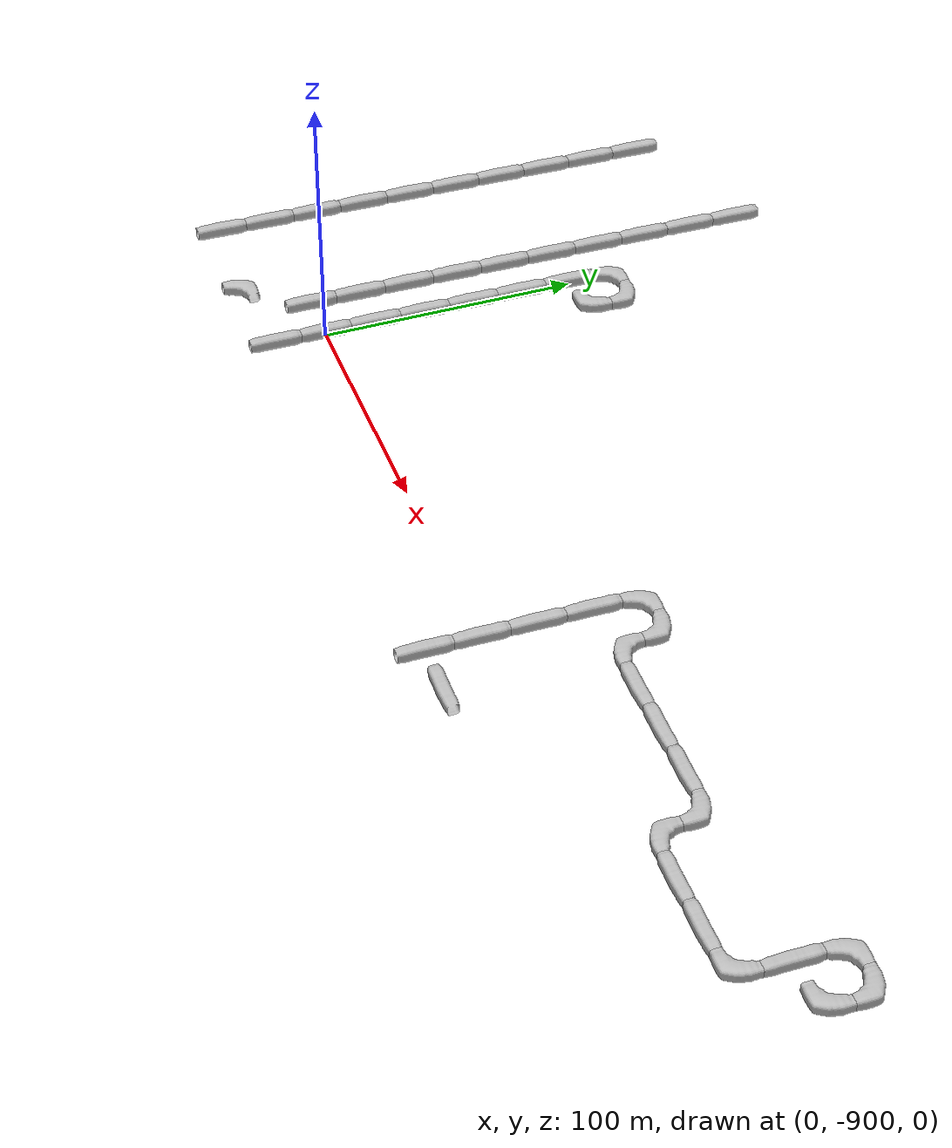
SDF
<sdf version="1.6">
 <world name="cave_16000_0">
  <include>
   <static>true</static>
   <name>cave_-1_-36</name>
   <pose>-20 -720 0 0 0 0.0</pose>
   <uri>model://cave_straight_20m</uri>
  </include>
  <include>
   <static>true</static>
   <name>cave_-1_-37</name>
   <pose>-20 -740 0 0 0 0.0</pose>
   <uri>model://cave_straight_20m</uri>
  </include>
  <include>
   <static>true</static>
   <name>cave_-1_-38</name>
   <pose>-20 -760 0 0 0 0.0</pose>
   <uri>model://cave_straight_20m</uri>
  </include>
  <include>
   <static>true</static>
   <name>cave_-1_-39</name>
   <pose>-20 -780 0 0 0 0.0</pose>
   <uri>model://cave_straight_20m</uri>
  </include>
  <include>
   <static>true</static>
   <name>cave_-1_-40</name>
   <pose>-20 -800 0 0 0 0.0</pose>
   <uri>model://cave_straight_20m</uri>
  </include>
  <include>
   <static>true</static>
   <name>cave_-1_-41</name>
   <pose>-20 -820 0 0 0 0.0</pose>
   <uri>model://cave_straight_20m</uri>
  </include>
  <include>
   <static>true</static>
   <name>cave_-1_-42</name>
   <pose>-20 -840 0 0 0 0.0</pose>
   <uri>model://cave_straight_20m</uri>
  </include>
  <include>
   <static>true</static>
   <name>cave_-1_-43</name>
   <pose>-20 -860 0 0 0 0.0</pose>
   <uri>model://cave_straight_20m</uri>
  </include>
  <include>
   <static>true</static>
   <name>cave_-1_-44</name>
   <pose>-20 -880 0 0 0 0.0</pose>
   <uri>model://cave_straight_20m</uri>
  </include>
  <include>
   <static>true</static>
   <name>cave_-1_-45</name>
   <pose>-20 -900 0 0 0 0.0</pose>
   <uri>model://cave_straight_20m</uri>
  </include>
  <include>
   <static>true</static>
   <name>cave_10_-46</name>
   <pose>200 -920 0 0 0 1.5707963267948966</pose>
   <uri>model://cave_straight_20m</uri>
  </include>
  <include>
   <static>true</static>
   <name>cave_9_-46</name>
   <pose>180 -920 0 0 0 0.0</pose>
   <uri>model://cave_straight_20m</uri>
  </include>
  <include>
   <static>true</static>
   <name>cave_9_-45</name>
   <pose>180 -900 0 0 0 0.0</pose>
   <uri>model://cave_straight_20m</uri>
  </include>
  <include>
   <static>true</static>
   <name>cave_9_-44</name>
   <pose>180 -880 0 0 0 0.0</pose>
   <uri>model://cave_straight_20m</uri>
  </include>
  <include>
   <static>true</static>
   <name>cave_9_-43</name>
   <pose>180 -860 0 0 0 0.0</pose>
   <uri>model://cave_straight_20m</uri>
  </include>
  <include>
   <static>true</static>
   <name>cave_9_-42</name>
   <pose>180 -840 0 0 0 -1.5707963267948966</pose>
   <uri>model://cave_L_20m</uri>
  </include>
  <include>
   <static>true</static>
   <name>cave_10_-42</name>
   <pose>200 -840 0 0 0 3.141592653589793</pose>
   <uri>model://cave_L_20m</uri>
  </include>
  <include>
   <static>true</static>
   <name>cave_10_-43</name>
   <pose>200 -860 0 0 0 0.0</pose>
   <uri>model://cave_L_20m</uri>
  </include>
  <include>
   <static>true</static>
   <name>cave_11_-43</name>
   <pose>220 -860 0 0 0 1.5707963267948966</pose>
   <uri>model://cave_straight_20m</uri>
  </include>
  <include>
   <static>true</static>
   <name>cave_12_-43</name>
   <pose>240 -860 0 0 0 1.5707963267948966</pose>
   <uri>model://cave_straight_20m</uri>
  </include>
  <include>
   <static>true</static>
   <name>cave_13_-43</name>
   <pose>260 -860 0 0 0 1.5707963267948966</pose>
   <uri>model://cave_straight_20m</uri>
  </include>
  <include>
   <static>true</static>
   <name>cave_14_-43</name>
   <pose>280 -860 0 0 0 3.141592653589793</pose>
   <uri>model://cave_L_20m</uri>
  </include>
  <include>
   <static>true</static>
   <name>cave_14_-44</name>
   <pose>280 -880 0 0 0 0.0</pose>
   <uri>model://cave_L_20m</uri>
  </include>
  <include>
   <static>true</static>
   <name>cave_15_-44</name>
   <pose>300 -880 0 0 0 1.5707963267948966</pose>
   <uri>model://cave_straight_20m</uri>
  </include>
  <include>
   <static>true</static>
   <name>cave_16_-44</name>
   <pose>320 -880 0 0 0 1.5707963267948966</pose>
   <uri>model://cave_straight_20m</uri>
  </include>
  <include>
   <static>true</static>
   <name>cave_17_-44</name>
   <pose>340 -880 0 0 0 1.5707963267948966</pose>
   <uri>model://cave_L_20m</uri>
  </include>
  <include>
   <static>true</static>
   <name>cave_17_-43</name>
   <pose>340 -860 0 0 0 0.0</pose>
   <uri>model://cave_straight_20m</uri>
  </include>
  <include>
   <static>true</static>
   <name>cave_17_-42</name>
   <pose>340 -840 0 0 0 -1.5707963267948966</pose>
   <uri>model://cave_L_20m</uri>
  </include>
  <include>
   <static>true</static>
   <name>cave_18_-42</name>
   <pose>360 -840 0 0 0 3.141592653589793</pose>
   <uri>model://cave_L_20m</uri>
  </include>
  <include>
   <static>true</static>
   <name>cave_18_-43</name>
   <pose>360 -860 0 0 0 1.5707963267948966</pose>
   <uri>model://cave_L_20m</uri>
  </include>
  <include>
   <static>true</static>
   <name>cave_0_-46</name>
   <pose>0 -920 0 0 0 0.0</pose>
   <uri>model://cave_straight_20m</uri>
  </include>
  <include>
   <static>true</static>
   <name>cave_0_-45</name>
   <pose>0 -900 0 0 0 0.0</pose>
   <uri>model://cave_straight_20m</uri>
  </include>
  <include>
   <static>true</static>
   <name>cave_0_-44</name>
   <pose>0 -880 0 0 0 0.0</pose>
   <uri>model://cave_straight_20m</uri>
  </include>
  <include>
   <static>true</static>
   <name>cave_0_-43</name>
   <pose>0 -860 0 0 0 0.0</pose>
   <uri>model://cave_straight_20m</uri>
  </include>
  <include>
   <static>true</static>
   <name>cave_0_-42</name>
   <pose>0 -840 0 0 0 0.0</pose>
   <uri>model://cave_straight_20m</uri>
  </include>
  <include>
   <static>true</static>
   <name>cave_0_-41</name>
   <pose>0 -820 0 0 0 0.0</pose>
   <uri>model://cave_straight_20m</uri>
  </include>
  <include>
   <static>true</static>
   <name>cave_0_-40</name>
   <pose>0 -800 0 0 0 0.0</pose>
   <uri>model://cave_straight_20m</uri>
  </include>
  <include>
   <static>true</static>
   <name>cave_0_-39</name>
   <pose>0 -780 0 0 0 -1.5707963267948966</pose>
   <uri>model://cave_L_20m</uri>
  </include>
  <include>
   <static>true</static>
   <name>cave_1_-39</name>
   <pose>20 -780 0 0 0 3.141592653589793</pose>
   <uri>model://cave_L_20m</uri>
  </include>
  <include>
   <static>true</static>
   <name>cave_1_-40</name>
   <pose>20 -800 0 0 0 1.5707963267948966</pose>
   <uri>model://cave_L_20m</uri>
  </include>
  <include>
   <static>true</static>
   <name>cave_-2_-46</name>
   <pose>-40 -920 0 0 0 -1.5707963267948966</pose>
   <uri>model://cave_L_20m</uri>
  </include>
  <include>
   <static>true</static>
   <name>cave_-4_-37</name>
   <pose>-80 -740 0 0 0 0.0</pose>
   <uri>model://cave_straight_20m</uri>
  </include>
  <include>
   <static>true</static>
   <name>cave_-4_-38</name>
   <pose>-80 -760 0 0 0 0.0</pose>
   <uri>model://cave_straight_20m</uri>
  </include>
  <include>
   <static>true</static>
   <name>cave_-4_-39</name>
   <pose>-80 -780 0 0 0 0.0</pose>
   <uri>model://cave_straight_20m</uri>
  </include>
  <include>
   <static>true</static>
   <name>cave_-4_-40</name>
   <pose>-80 -800 0 0 0 0.0</pose>
   <uri>model://cave_straight_20m</uri>
  </include>
  <include>
   <static>true</static>
   <name>cave_-4_-41</name>
   <pose>-80 -820 0 0 0 0.0</pose>
   <uri>model://cave_straight_20m</uri>
  </include>
  <include>
   <static>true</static>
   <name>cave_-4_-42</name>
   <pose>-80 -840 0 0 0 0.0</pose>
   <uri>model://cave_straight_20m</uri>
  </include>
  <include>
   <static>true</static>
   <name>cave_-4_-43</name>
   <pose>-80 -860 0 0 0 0.0</pose>
   <uri>model://cave_straight_20m</uri>
  </include>
  <include>
   <static>true</static>
   <name>cave_-4_-44</name>
   <pose>-80 -880 0 0 0 0.0</pose>
   <uri>model://cave_straight_20m</uri>
  </include>
  <include>
   <static>true</static>
   <name>cave_-4_-45</name>
   <pose>-80 -900 0 0 0 0.0</pose>
   <uri>model://cave_straight_20m</uri>
  </include>
  <include>
   <static>true</static>
   <name>cave_-4_-46</name>
   <pose>-80 -920 0 0 0 0.0</pose>
   <uri>model://cave_straight_20m</uri>
  </include>
 </world>
</sdf>
